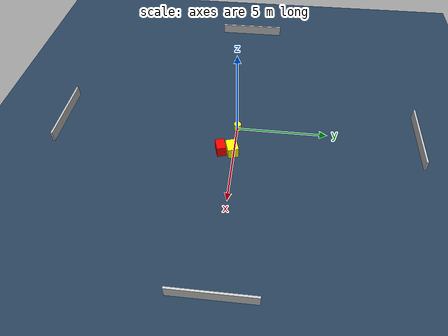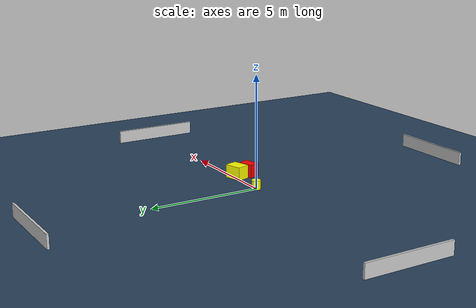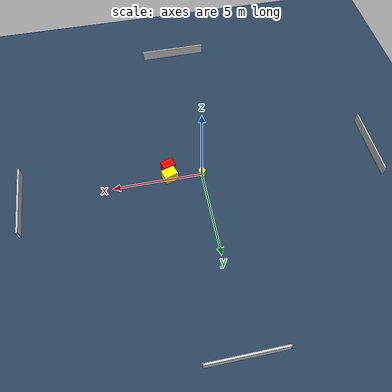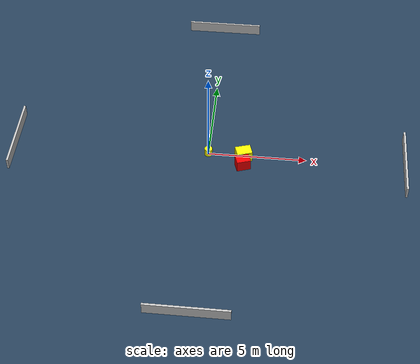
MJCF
<?xml version="1.0" ?>
<mujoco model="generated_environment">
  <option timestep="0.01" integrator="RK4" cone="elliptic"/>
  <default>
    <geom density="1"/>
  </default>
  <asset>
    <texture builtin="gradient" height="3072" name="skybox" rgb1="0.3 0.5 0.7" rgb2="0 0 0" type="skybox" width="512"/>
    <texture builtin="checker" height="300" name="groundplane" rgb1="0.2 0.3 0.4" rgb2="0.1 0.2 0.3" type="2d" width="300"/>
    <material name="groundplane" reflectance="0.2" texrepeat="5 5" texture="groundplane"/>
  </asset>
  <worldbody>
    <light dir="0 0 -1" directional="true" pos="0 0 1.5"/>
    <geom condim="3" friction="0.5 0.005 0.001" material="groundplane" name="floor" pos="0 0 0" size="0 0 0.05" type="plane"/>
    <body name="walls">
      <geom name="wall_1" condim="4" pos="-10.0 0.0 0.3" rgba="0.800000011920929 0.800000011920929 0.800000011920929 1.0" size="0.05 2.0 0.3" type="box"/>
      <geom name="wall_2" condim="4" pos="10.0 0.0 0.3" rgba="0.800000011920929 0.800000011920929 0.800000011920929 1.0" size="0.05 2.0 0.3" type="box"/>
      <geom name="wall_3" condim="4" pos="0.0 -10.0 0.3" rgba="0.800000011920929 0.800000011920929 0.800000011920929 1.0" size="2.0 0.05 0.3" type="box"/>
      <geom name="wall_4" condim="4" pos="0.0 10.0 0.3" rgba="0.800000011920929 0.800000011920929 0.800000011920929 1.0" size="2.0 0.05 0.3" type="box"/>
    </body>
    <body name="robot">
      <joint name="joint_x" type="slide" pos="0 0 0" axis="1 0 0"/>
      <joint name="joint_y" type="slide" pos="0 0 0" axis="0 1 0"/>
      <geom name="robot" type="cylinder" pos="0.0 0.0 0.2" size="0.2 0.2 0.0" mass="5.0" friction="1.0 0.005 0.0001" condim="4" rgba="1.0 1.0 0.0 1.0"/>
    </body>
    <body name="obstacle_1_movable">
      <geom name="obstacle_1_movable" condim="4" pos="1.8110829612566357 -0.10974588766097515 0.3" euler="0 0 107.49765473804942" friction="0.0 0.005 0.001" rgba="1.0 1.0 0.0 1.0" size="0.29104057236231495 0.3941275322004097 0.3" type="box" mass="0.1"/>
      <joint type="free"/>
    </body>
    <body name="obstacle_2_static">
      <geom name="obstacle_2_static" condim="4" pos="1.8081376648426326 -0.72394103777469 0.3" euler="0 0 18.03197811464434" friction="0.0 0.005 0.001" rgba="1.0 0.0 0.0 1.0" size="0.35171134846485086 0.24764781597908725 0.3" type="box"/>
    </body>
  </worldbody>
  <actuator>
    <motor name="actuator_x" joint="joint_x" gear="1" ctrlrange="-1 1"/>
    <motor name="actuator_y" joint="joint_y" gear="1" ctrlrange="-1 1"/>
  </actuator>
</mujoco>
